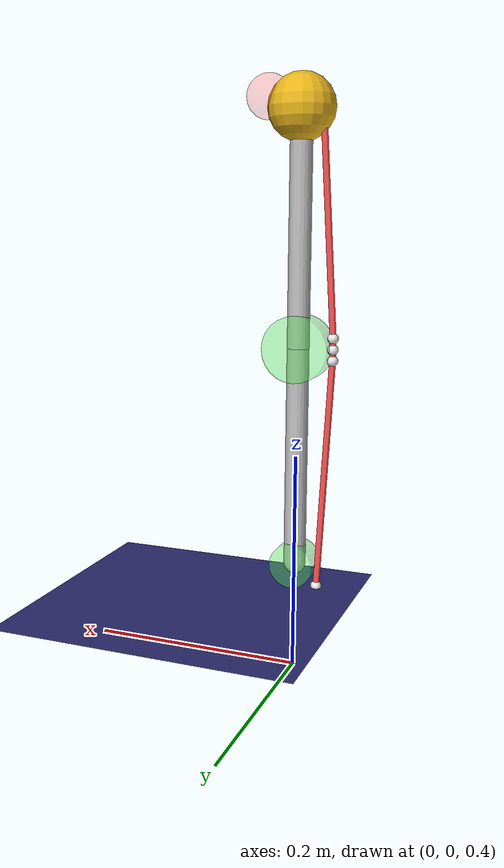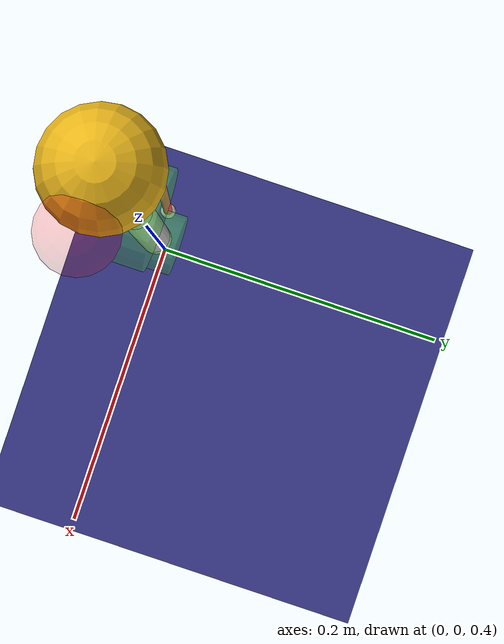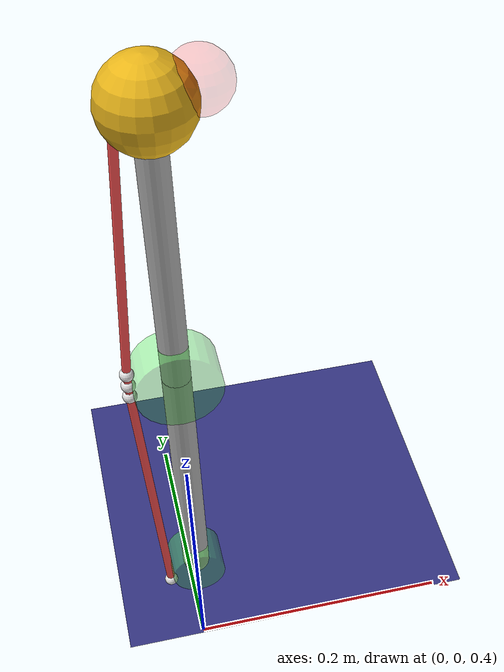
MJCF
<mujoco model="biomtu_test_simple">
<option gravity="0 0 -9.81" integrator="RK4" timestep="0.005" solver="Newton" iterations="1" ls_iterations="4"/>
<default>
    <geom type="capsule" size=".01" rgba=".9 .7 .1 1"/>
    <site rgba=".9 .9 .9 1"/>
    <default class="bones">
        <geom type="capsule" density="20" size=".01" rgba=".7 .7 .7 1" contype="0" conaffinity="0"/>
    </default>
    <default class="joint">
        <geom type="cylinder" fromto="0 .015 0  0 -.015 0" size=".03" rgba=".3 .9 .3 .4" contype="0" conaffinity="0"/>
    </default>
</default>
<visual>
  <global offwidth="1920" offheight="1080"/>
</visual>
<asset>
    <texture type="skybox" builtin="gradient" rgb1=".3 .5 .7" rgb2="0 0 0" width="32" height="512"/>
    <texture name="body" type="cube" builtin="flat" mark="cross" width="128" height="128" rgb1="0.8 0.6 0.4" rgb2="0.8 0.6 0.4" markrgb="1 1 1" random="0.01"/>
    <material name="body" texture="body" texuniform="true" rgba="0.8 0.6 .4 1"/>
    <texture name="grid" type="2d" builtin="checker" width="512" height="512" rgb1=".1 .2 .3" rgb2=".2 .3 .4"/>
    <material name="grid" texture="grid" texrepeat="1 1" texuniform="true" reflectance=".2"/>
</asset>

<worldbody>
    <light pos="0 0 1"/>

    <body name="main" pos="0 0 0.5">
        <geom type="plane" pos="0 0 -0.021" size=".2 .2 0.01" rgba=".2 .2 .5 1"/>
        <site name="s1" pos="-0.021 0 -0.02"/>
        <body name="skeleton" pos="0 0 0">
            <joint axis="0 1 0" type="hinge" damping="0.0" pos='0 0 0' range="-60 60" limited="true"/>
            <geom name="joint1" class="joint" size="0.02"/>

            <geom name="bone1" class="bones"  fromto="0.0 0 0  0 0 0.2"/>
            <site name="s2" pos="-.032 0 0.19"/>
            <site name="side1" pos="-.032 0 0.20"/>

            <body pos="0 0 .2">
                <joint axis="0 1 0" type="hinge" damping="0.0" pos='0 0 0' range="20 80" limited="true"/>
                <geom name="joint2" class="joint"/>
                <geom name="bone2" class="bones"  fromto="0.0 0 0  0 0 0.2"/>
                <site name="s3" pos="-.032 0 0.01"/>
                <site name="s4" pos="-.02 0 0.2"/>
                <site name="side2" pos="-0.032 0 -0.00"/>
                <body name="end_body1" pos="0 0 0.21">
                    <geom name="end" type="sphere" size="0.03" pos="0 0 0" density="1500" contype="1"/>
                </body>
            </body>
        </body>
    </body>
    <body name="end_body2" pos="0.03 0 0.92">
        <joint axis="0 0 1" type="slide"/>
        <geom name="end2" type="sphere" density="200" size="0.02" pos="0 0 0" contype="2" rgba="1 0 0 .1"/>
    </body>

</worldbody>

<equality>
    <connect body1="end_body1" body2="end_body2" anchor="0 0 0"/>
</equality>

<contact>
        <exclude body1="end_body1" body2="end_body2" />
</contact>

<biomtu>
    <spatial name="mtu_1" width=".003" tendon_slack_l="0.20" max_isometric_force="1000"
        max_contraction_velocity="10.0" optimal_fiber_length="0.20"
        optimal_pennation_angle="0.052360" rgba=".95 .3 .3 1"
        virtual_mass="1">
        <site site="s1"/>
        <site site="s2"/>
        <site site="side1"/>
        <site site="side2"/>
        <site site="s3"/>
        <site site="s4"/>
    </spatial>
</biomtu>

<tendon>
    <spatial name="tendon0"  springlength="0.3" stiffness="0" limited="false" width=".003" rgba=".95 .3 .3 1">
        <site site="s1"/>
        <site site="s2"/>
        <site site="side1"/>
        <site site="side2"/>
        <site site="s3"/>
        <site site="s4"/>
    </spatial>
</tendon>

</mujoco>
